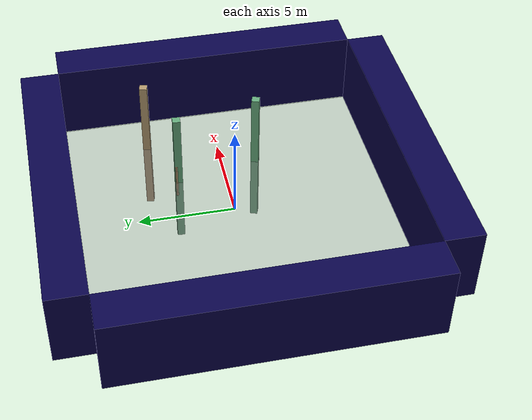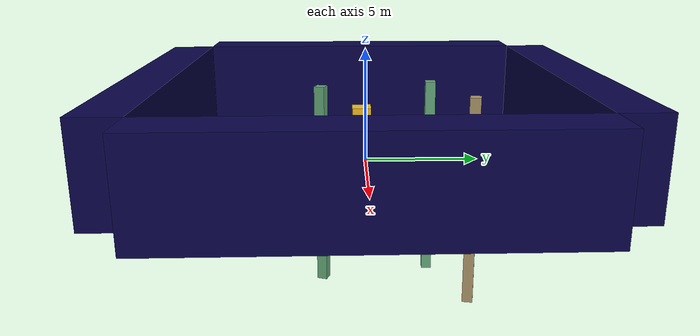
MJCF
<mujoco model="unnamed_model">
  <default>
    <default class="/" />
    <default class="border/" />
    <default class="border_1/" />
    <default class="border_2/" />
    <default class="border_3/" />
    <default class="light/" />
    <default class="agent/" />
    <default class="stone0/" />
    <default class="stone1/" />
    <default class="apple/" />
    <default class="apple_1/" />
  </default>
  <worldbody>
    <body name="border/">
      <body name="border/border" pos="0 9 2">
        <geom name="border/border_geom" class="border/" type="box" size="8.0 1.0 2.0" rgba="0.035 0.016 0.29 1.0" />
      </body>
    </body>
    <body name="border_1/">
      <body name="border_1/border" pos="0 -9 2">
        <geom name="border_1/border_geom" class="border_1/" type="box" size="8.0 1.0 2.0" rgba="0.035 0.016 0.29 1.0" />
      </body>
    </body>
    <body name="border_2/">
      <body name="border_2/border" pos="9 0 2">
        <geom name="border_2/border_geom" class="border_2/" type="box" size="1.0 8.0 2.0" rgba="0.035 0.016 0.29 1.0" />
      </body>
    </body>
    <body name="border_3/">
      <body name="border_3/border" pos="-9 0 2">
        <geom name="border_3/border_geom" class="border_3/" type="box" size="1.0 8.0 2.0" rgba="0.035 0.016 0.29 1.0" />
      </body>
    </body>
    <body name="light/">
      <body name="light/light" pos="0 0 15">
        <geom name="light/light_geom" class="light/" size="0.5" rgba="1.0 1.0 1.0 0.0" />
        <light name="light//unnamed_light_0" class="light/" />
      </body>
    </body>
    <body euler="0 0 270.01947135039211" name="agent/" pos="-6.4000000000000004 0 0.5">
      <joint name="agent/boxagent_freeJoint/" class="/" type="free" />
      <body name="agent/agent" pos="0 0 0" euler="0 0 0">
        <geom name="agent/boxagent_geom" class="agent/" type="box" size="0.5 0.5 0.5" rgba="0.949 0.7451 0.1333 1.0" euler="0 0 0" />
        <camera name="agent/boxagent_camera" class="agent/" fovy="90" pos="0 0 0.25" euler="-90 180 0" />
      </body>
    </body>
    <body name="stone0/">
      <body name="stone0/stone0" pos="5.7885999999999997 3.7410999999999994 0.10000000000000001" euler="0 0 -102.41443051492914">
        <geom name="stone0/stone_geom" class="stone0/" type="box" size="0.2 0.2 4.0" rgba="0.6980392156862745 0.6 0.43137254901960786 1.0" />
      </body>
    </body>
    <body name="stone1/">
      <body name="stone1/stone1" pos="2.7835999999999999 2.4796999999999993 0.10000000000000001" euler="0 0 -93.047169157635636">
        <geom name="stone1/stone_geom" class="stone1/" type="box" size="0.2 0.2 4.0" rgba="0.396078431372549 0.6705882352941176 0.48627450980392156 1.0" />
      </body>
    </body>
    <body name="apple/">
      <body name="apple/apple" pos="3.6354500000000001 -1.8353000000000002 0.10000000000000001" euler="0 0 -20.217480894646741">
        <geom name="apple/apple_geom" class="apple/" type="box" size="0.2 0.2 4.0" rgba="0.396078431372549 0.6705882352941176 0.48627450980392156 1.0" />
      </body>
    </body>
    <body name="apple_1/">
      <body name="apple_1/apple" pos="2.5982000000000003 2.6049000000000007 0.10000000000000001" euler="0 0 -59.685974794695127">
        <geom name="apple_1/apple_geom" class="apple_1/" type="box" size="0.05 0.05 1.0" rgba="0.6980392156862745 0.6 0.43137254901960786 1.0" />
      </body>
    </body>
    <geom name="base_plane" class="/" type="plane" size="8 8 0.10000000000000001" />
  </worldbody>
</mujoco>
